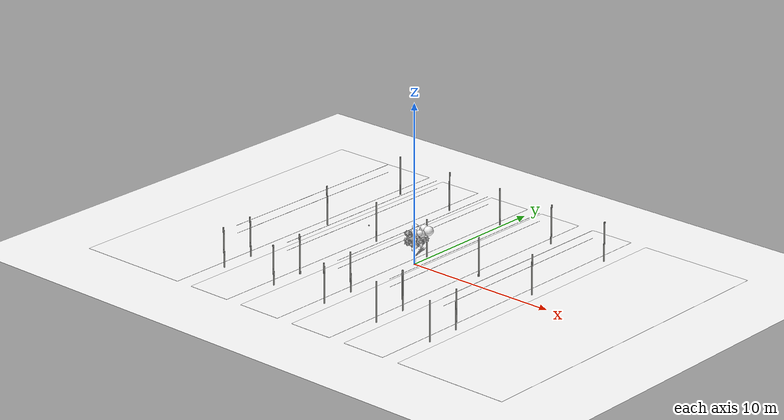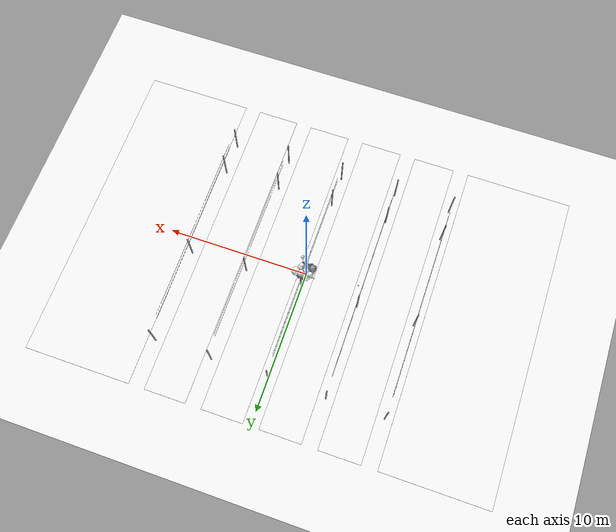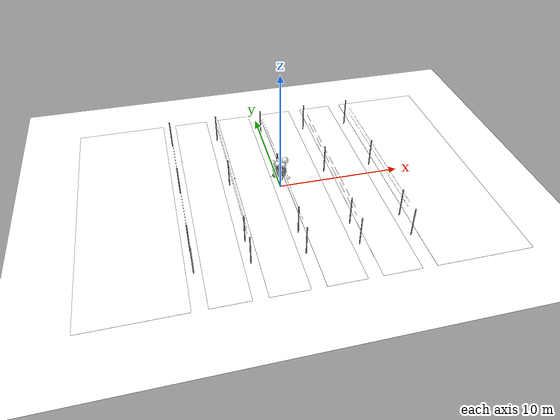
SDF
<sdf version="1.11">
 <world name="peach_orchard">
  <model name="ground">
   <static>true</static>
   <link name="link">
    <visual name="soil">
     <geometry><plane><normal>0 0 1</normal><size>32 22</size></plane></geometry>
     <material>
      <ambient>1 1 1 1</ambient>
      <diffuse>1 1 1 1</diffuse>
      <specular>0.1 0.1 0.1 1</specular>
      <pbr>
       <metal>
        <albedo_map>textures/soil_albedo.png</albedo_map>
        <normal_map type="tangent">textures/soil_normal.png</normal_map>
        <roughness>0.95</roughness>
        <metalness>0</metalness>
       </metal>
      </pbr>
     </material>
    </visual>
    <collision name="c_soil">
     <geometry><plane><normal>0 0 1</normal><size>32 22</size></plane></geometry>
    </collision>
   </link>
  </model>
  <model name="ground_cover">
   <static>true</static>
   <link name="link">
    <visual name="grass_0">
     <pose>-12.275 0 0.006 0 0 0</pose>
     <geometry><box><size>7.45 22 0.012</size></box></geometry>
     <material>
      <ambient>1 1 1 1</ambient>
      <diffuse>1 1 1 1</diffuse>
      <specular>0.1 0.1 0.1 1</specular>
      <pbr>
       <metal>
        <albedo_map>textures/grass_albedo.png</albedo_map>
        <normal_map type="tangent">textures/grass_normal.png</normal_map>
        <roughness>0.95</roughness>
        <metalness>0</metalness>
       </metal>
      </pbr>
     </material>
    </visual>
    <visual name="grass_1">
     <pose>12.275 0 0.006 0 0 0</pose>
     <geometry><box><size>7.45 22 0.012</size></box></geometry>
     <material>
      <ambient>1 1 1 1</ambient>
      <diffuse>1 1 1 1</diffuse>
      <specular>0.1 0.1 0.1 1</specular>
      <pbr>
       <metal>
        <albedo_map>textures/grass_albedo.png</albedo_map>
        <normal_map type="tangent">textures/grass_normal.png</normal_map>
        <roughness>0.95</roughness>
        <metalness>0</metalness>
       </metal>
      </pbr>
     </material>
    </visual>
    <visual name="grass_2">
     <pose>-6 0 0.006 0 0 0</pose>
     <geometry><box><size>2.9 22 0.012</size></box></geometry>
     <material>
      <ambient>1 1 1 1</ambient>
      <diffuse>1 1 1 1</diffuse>
      <specular>0.1 0.1 0.1 1</specular>
      <pbr>
       <metal>
        <albedo_map>textures/grass_albedo.png</albedo_map>
        <normal_map type="tangent">textures/grass_normal.png</normal_map>
        <roughness>0.95</roughness>
        <metalness>0</metalness>
       </metal>
      </pbr>
     </material>
    </visual>
    <visual name="grass_3">
     <pose>-2 0 0.006 0 0 0</pose>
     <geometry><box><size>2.9 22 0.012</size></box></geometry>
     <material>
      <ambient>1 1 1 1</ambient>
      <diffuse>1 1 1 1</diffuse>
      <specular>0.1 0.1 0.1 1</specular>
      <pbr>
       <metal>
        <albedo_map>textures/grass_albedo.png</albedo_map>
        <normal_map type="tangent">textures/grass_normal.png</normal_map>
        <roughness>0.95</roughness>
        <metalness>0</metalness>
       </metal>
      </pbr>
     </material>
    </visual>
    <visual name="grass_4">
     <pose>2 0 0.006 0 0 0</pose>
     <geometry><box><size>2.9 22 0.012</size></box></geometry>
     <material>
      <ambient>1 1 1 1</ambient>
      <diffuse>1 1 1 1</diffuse>
      <specular>0.1 0.1 0.1 1</specular>
      <pbr>
       <metal>
        <albedo_map>textures/grass_albedo.png</albedo_map>
        <normal_map type="tangent">textures/grass_normal.png</normal_map>
        <roughness>0.95</roughness>
        <metalness>0</metalness>
       </metal>
      </pbr>
     </material>
    </visual>
    <visual name="grass_5">
     <pose>6 0 0.006 0 0 0</pose>
     <geometry><box><size>2.9 22 0.012</size></box></geometry>
     <material>
      <ambient>1 1 1 1</ambient>
      <diffuse>1 1 1 1</diffuse>
      <specular>0.1 0.1 0.1 1</specular>
      <pbr>
       <metal>
        <albedo_map>textures/grass_albedo.png</albedo_map>
        <normal_map type="tangent">textures/grass_normal.png</normal_map>
        <roughness>0.95</roughness>
        <metalness>0</metalness>
       </metal>
      </pbr>
     </material>
    </visual>
   </link>
  </model>
  <model name="trellis_row_0">
   <static>true</static>
   <link name="link">
    <visual name="post_0">
     <pose>-8 -7.7 1.25 0 0 0</pose>
     <geometry><cylinder><radius>0.045</radius><length>2.5</length></cylinder></geometry>
     <material>
      <ambient>0.62 0.62 0.6 1</ambient>
      <diffuse>0.62 0.62 0.6 1</diffuse>
      <specular>0.1 0.1 0.1 1</specular>
     </material>
    </visual>
    <collision name="c_post_0">
     <pose>-8 -7.7 1.25 0 0 0</pose>
     <geometry><cylinder><radius>0.045</radius><length>2.5</length></cylinder></geometry>
    </collision>
    <visual name="post_1">
     <pose>-8 7.7 1.25 0 0 0</pose>
     <geometry><cylinder><radius>0.045</radius><length>2.5</length></cylinder></geometry>
     <material>
      <ambient>0.62 0.62 0.6 1</ambient>
      <diffuse>0.62 0.62 0.6 1</diffuse>
      <specular>0.1 0.1 0.1 1</specular>
     </material>
    </visual>
    <collision name="c_post_1">
     <pose>-8 7.7 1.25 0 0 0</pose>
     <geometry><cylinder><radius>0.045</radius><length>2.5</length></cylinder></geometry>
    </collision>
    <visual name="post_2">
     <pose>-8 -5.5 1.25 0 0 0</pose>
     <geometry><cylinder><radius>0.045</radius><length>2.5</length></cylinder></geometry>
     <material>
      <ambient>0.62 0.62 0.6 1</ambient>
      <diffuse>0.62 0.62 0.6 1</diffuse>
      <specular>0.1 0.1 0.1 1</specular>
     </material>
    </visual>
    <collision name="c_post_2">
     <pose>-8 -5.5 1.25 0 0 0</pose>
     <geometry><cylinder><radius>0.045</radius><length>2.5</length></cylinder></geometry>
    </collision>
    <visual name="post_3">
     <pose>-8 1.1 1.25 0 0 0</pose>
     <geometry><cylinder><radius>0.045</radius><length>2.5</length></cylinder></geometry>
     <material>
      <ambient>0.62 0.62 0.6 1</ambient>
      <diffuse>0.62 0.62 0.6 1</diffuse>
      <specular>0.1 0.1 0.1 1</specular>
     </material>
    </visual>
    <collision name="c_post_3">
     <pose>-8 1.1 1.25 0 0 0</pose>
     <geometry><cylinder><radius>0.045</radius><length>2.5</length></cylinder></geometry>
    </collision>
    <visual name="wire_0">
     <pose>-8 0 1.8 0 1.5708 1.5708</pose>
     <geometry><cylinder><radius>0.006</radius><length>13.2</length></cylinder></geometry>
     <material>
      <ambient>0.45 0.45 0.45 1</ambient>
      <diffuse>0.45 0.45 0.45 1</diffuse>
      <specular>0.1 0.1 0.1 1</specular>
     </material>
    </visual>
    <visual name="wire_1">
     <pose>-8 0 2.3 0 1.5708 1.5708</pose>
     <geometry><cylinder><radius>0.006</radius><length>13.2</length></cylinder></geometry>
     <material>
      <ambient>0.45 0.45 0.45 1</ambient>
      <diffuse>0.45 0.45 0.45 1</diffuse>
      <specular>0.1 0.1 0.1 1</specular>
     </material>
    </visual>
   </link>
  </model>
  <model name="trellis_row_1">
   <static>true</static>
   <link name="link">
    <visual name="post_0">
     <pose>-4 -7.7 1.25 0 0 0</pose>
     <geometry><cylinder><radius>0.045</radius><length>2.5</length></cylinder></geometry>
     <material>
      <ambient>0.62 0.62 0.6 1</ambient>
      <diffuse>0.62 0.62 0.6 1</diffuse>
      <specular>0.1 0.1 0.1 1</specular>
     </material>
    </visual>
    <collision name="c_post_0">
     <pose>-4 -7.7 1.25 0 0 0</pose>
     <geometry><cylinder><radius>0.045</radius><length>2.5</length></cylinder></geometry>
    </collision>
    <visual name="post_1">
     <pose>-4 7.7 1.25 0 0 0</pose>
     <geometry><cylinder><radius>0.045</radius><length>2.5</length></cylinder></geometry>
     <material>
      <ambient>0.62 0.62 0.6 1</ambient>
      <diffuse>0.62 0.62 0.6 1</diffuse>
      <specular>0.1 0.1 0.1 1</specular>
     </material>
    </visual>
    <collision name="c_post_1">
     <pose>-4 7.7 1.25 0 0 0</pose>
     <geometry><cylinder><radius>0.045</radius><length>2.5</length></cylinder></geometry>
    </collision>
    <visual name="post_2">
     <pose>-4 -5.5 1.25 0 0 0</pose>
     <geometry><cylinder><radius>0.045</radius><length>2.5</length></cylinder></geometry>
     <material>
      <ambient>0.62 0.62 0.6 1</ambient>
      <diffuse>0.62 0.62 0.6 1</diffuse>
      <specular>0.1 0.1 0.1 1</specular>
     </material>
    </visual>
    <collision name="c_post_2">
     <pose>-4 -5.5 1.25 0 0 0</pose>
     <geometry><cylinder><radius>0.045</radius><length>2.5</length></cylinder></geometry>
    </collision>
    <visual name="post_3">
     <pose>-4 1.1 1.25 0 0 0</pose>
     <geometry><cylinder><radius>0.045</radius><length>2.5</length></cylinder></geometry>
     <material>
      <ambient>0.62 0.62 0.6 1</ambient>
      <diffuse>0.62 0.62 0.6 1</diffuse>
      <specular>0.1 0.1 0.1 1</specular>
     </material>
    </visual>
    <collision name="c_post_3">
     <pose>-4 1.1 1.25 0 0 0</pose>
     <geometry><cylinder><radius>0.045</radius><length>2.5</length></cylinder></geometry>
    </collision>
    <visual name="wire_0">
     <pose>-4 0 1.8 0 1.5708 1.5708</pose>
     <geometry><cylinder><radius>0.006</radius><length>13.2</length></cylinder></geometry>
     <material>
      <ambient>0.45 0.45 0.45 1</ambient>
      <diffuse>0.45 0.45 0.45 1</diffuse>
      <specular>0.1 0.1 0.1 1</specular>
     </material>
    </visual>
    <visual name="wire_1">
     <pose>-4 0 2.3 0 1.5708 1.5708</pose>
     <geometry><cylinder><radius>0.006</radius><length>13.2</length></cylinder></geometry>
     <material>
      <ambient>0.45 0.45 0.45 1</ambient>
      <diffuse>0.45 0.45 0.45 1</diffuse>
      <specular>0.1 0.1 0.1 1</specular>
     </material>
    </visual>
   </link>
  </model>
  <model name="trellis_row_2">
   <static>true</static>
   <link name="link">
    <visual name="post_0">
     <pose>0 -7.7 1.25 0 0 0</pose>
     <geometry><cylinder><radius>0.045</radius><length>2.5</length></cylinder></geometry>
     <material>
      <ambient>0.62 0.62 0.6 1</ambient>
      <diffuse>0.62 0.62 0.6 1</diffuse>
      <specular>0.1 0.1 0.1 1</specular>
     </material>
    </visual>
    <collision name="c_post_0">
     <pose>0 -7.7 1.25 0 0 0</pose>
     <geometry><cylinder><radius>0.045</radius><length>2.5</length></cylinder></geometry>
    </collision>
    <visual name="post_1">
     <pose>0 7.7 1.25 0 0 0</pose>
     <geometry><cylinder><radius>0.045</radius><length>2.5</length></cylinder></geometry>
     <material>
      <ambient>0.62 0.62 0.6 1</ambient>
      <diffuse>0.62 0.62 0.6 1</diffuse>
      <specular>0.1 0.1 0.1 1</specular>
     </material>
    </visual>
    <collision name="c_post_1">
     <pose>0 7.7 1.25 0 0 0</pose>
     <geometry><cylinder><radius>0.045</radius><length>2.5</length></cylinder></geometry>
    </collision>
    <visual name="post_2">
     <pose>0 -5.5 1.25 0 0 0</pose>
     <geometry><cylinder><radius>0.045</radius><length>2.5</length></cylinder></geometry>
     <material>
      <ambient>0.62 0.62 0.6 1</ambient>
      <diffuse>0.62 0.62 0.6 1</diffuse>
      <specular>0.1 0.1 0.1 1</specular>
     </material>
    </visual>
    <collision name="c_post_2">
     <pose>0 -5.5 1.25 0 0 0</pose>
     <geometry><cylinder><radius>0.045</radius><length>2.5</length></cylinder></geometry>
    </collision>
    <visual name="post_3">
     <pose>0 1.1 1.25 0 0 0</pose>
     <geometry><cylinder><radius>0.045</radius><length>2.5</length></cylinder></geometry>
     <material>
      <ambient>0.62 0.62 0.6 1</ambient>
      <diffuse>0.62 0.62 0.6 1</diffuse>
      <specular>0.1 0.1 0.1 1</specular>
     </material>
    </visual>
    <collision name="c_post_3">
     <pose>0 1.1 1.25 0 0 0</pose>
     <geometry><cylinder><radius>0.045</radius><length>2.5</length></cylinder></geometry>
    </collision>
    <visual name="wire_0">
     <pose>0 0 1.8 0 1.5708 1.5708</pose>
     <geometry><cylinder><radius>0.006</radius><length>13.2</length></cylinder></geometry>
     <material>
      <ambient>0.45 0.45 0.45 1</ambient>
      <diffuse>0.45 0.45 0.45 1</diffuse>
      <specular>0.1 0.1 0.1 1</specular>
     </material>
    </visual>
    <visual name="wire_1">
     <pose>0 0 2.3 0 1.5708 1.5708</pose>
     <geometry><cylinder><radius>0.006</radius><length>13.2</length></cylinder></geometry>
     <material>
      <ambient>0.45 0.45 0.45 1</ambient>
      <diffuse>0.45 0.45 0.45 1</diffuse>
      <specular>0.1 0.1 0.1 1</specular>
     </material>
    </visual>
   </link>
  </model>
  <model name="trellis_row_3">
   <static>true</static>
   <link name="link">
    <visual name="post_0">
     <pose>4 -7.7 1.25 0 0 0</pose>
     <geometry><cylinder><radius>0.045</radius><length>2.5</length></cylinder></geometry>
     <material>
      <ambient>0.62 0.62 0.6 1</ambient>
      <diffuse>0.62 0.62 0.6 1</diffuse>
      <specular>0.1 0.1 0.1 1</specular>
     </material>
    </visual>
    <collision name="c_post_0">
     <pose>4 -7.7 1.25 0 0 0</pose>
     <geometry><cylinder><radius>0.045</radius><length>2.5</length></cylinder></geometry>
    </collision>
    <visual name="post_1">
     <pose>4 7.7 1.25 0 0 0</pose>
     <geometry><cylinder><radius>0.045</radius><length>2.5</length></cylinder></geometry>
     <material>
      <ambient>0.62 0.62 0.6 1</ambient>
      <diffuse>0.62 0.62 0.6 1</diffuse>
      <specular>0.1 0.1 0.1 1</specular>
     </material>
    </visual>
    <collision name="c_post_1">
     <pose>4 7.7 1.25 0 0 0</pose>
     <geometry><cylinder><radius>0.045</radius><length>2.5</length></cylinder></geometry>
    </collision>
    <visual name="post_2">
     <pose>4 -5.5 1.25 0 0 0</pose>
     <geometry><cylinder><radius>0.045</radius><length>2.5</length></cylinder></geometry>
     <material>
      <ambient>0.62 0.62 0.6 1</ambient>
      <diffuse>0.62 0.62 0.6 1</diffuse>
      <specular>0.1 0.1 0.1 1</specular>
     </material>
    </visual>
    <collision name="c_post_2">
     <pose>4 -5.5 1.25 0 0 0</pose>
     <geometry><cylinder><radius>0.045</radius><length>2.5</length></cylinder></geometry>
    </collision>
    <visual name="post_3">
     <pose>4 1.1 1.25 0 0 0</pose>
     <geometry><cylinder><radius>0.045</radius><length>2.5</length></cylinder></geometry>
     <material>
      <ambient>0.62 0.62 0.6 1</ambient>
      <diffuse>0.62 0.62 0.6 1</diffuse>
      <specular>0.1 0.1 0.1 1</specular>
     </material>
    </visual>
    <collision name="c_post_3">
     <pose>4 1.1 1.25 0 0 0</pose>
     <geometry><cylinder><radius>0.045</radius><length>2.5</length></cylinder></geometry>
    </collision>
    <visual name="wire_0">
     <pose>4 0 1.8 0 1.5708 1.5708</pose>
     <geometry><cylinder><radius>0.006</radius><length>13.2</length></cylinder></geometry>
     <material>
      <ambient>0.45 0.45 0.45 1</ambient>
      <diffuse>0.45 0.45 0.45 1</diffuse>
      <specular>0.1 0.1 0.1 1</specular>
     </material>
    </visual>
    <visual name="wire_1">
     <pose>4 0 2.3 0 1.5708 1.5708</pose>
     <geometry><cylinder><radius>0.006</radius><length>13.2</length></cylinder></geometry>
     <material>
      <ambient>0.45 0.45 0.45 1</ambient>
      <diffuse>0.45 0.45 0.45 1</diffuse>
      <specular>0.1 0.1 0.1 1</specular>
     </material>
    </visual>
   </link>
  </model>
  <model name="trellis_row_4">
   <static>true</static>
   <link name="link">
    <visual name="post_0">
     <pose>8 -7.7 1.25 0 0 0</pose>
     <geometry><cylinder><radius>0.045</radius><length>2.5</length></cylinder></geometry>
     <material>
      <ambient>0.62 0.62 0.6 1</ambient>
      <diffuse>0.62 0.62 0.6 1</diffuse>
      <specular>0.1 0.1 0.1 1</specular>
     </material>
    </visual>
    <collision name="c_post_0">
     <pose>8 -7.7 1.25 0 0 0</pose>
     <geometry><cylinder><radius>0.045</radius><length>2.5</length></cylinder></geometry>
    </collision>
    <visual name="post_1">
     <pose>8 7.7 1.25 0 0 0</pose>
     <geometry><cylinder><radius>0.045</radius><length>2.5</length></cylinder></geometry>
     <material>
      <ambient>0.62 0.62 0.6 1</ambient>
      <diffuse>0.62 0.62 0.6 1</diffuse>
      <specular>0.1 0.1 0.1 1</specular>
     </material>
    </visual>
    <collision name="c_post_1">
     <pose>8 7.7 1.25 0 0 0</pose>
     <geometry><cylinder><radius>0.045</radius><length>2.5</length></cylinder></geometry>
    </collision>
    <visual name="post_2">
     <pose>8 -5.5 1.25 0 0 0</pose>
     <geometry><cylinder><radius>0.045</radius><length>2.5</length></cylinder></geometry>
     <material>
      <ambient>0.62 0.62 0.6 1</ambient>
      <diffuse>0.62 0.62 0.6 1</diffuse>
      <specular>0.1 0.1 0.1 1</specular>
     </material>
    </visual>
    <collision name="c_post_2">
     <pose>8 -5.5 1.25 0 0 0</pose>
     <geometry><cylinder><radius>0.045</radius><length>2.5</length></cylinder></geometry>
    </collision>
    <visual name="post_3">
     <pose>8 1.1 1.25 0 0 0</pose>
     <geometry><cylinder><radius>0.045</radius><length>2.5</length></cylinder></geometry>
     <material>
      <ambient>0.62 0.62 0.6 1</ambient>
      <diffuse>0.62 0.62 0.6 1</diffuse>
      <specular>0.1 0.1 0.1 1</specular>
     </material>
    </visual>
    <collision name="c_post_3">
     <pose>8 1.1 1.25 0 0 0</pose>
     <geometry><cylinder><radius>0.045</radius><length>2.5</length></cylinder></geometry>
    </collision>
    <visual name="wire_0">
     <pose>8 0 1.8 0 1.5708 1.5708</pose>
     <geometry><cylinder><radius>0.006</radius><length>13.2</length></cylinder></geometry>
     <material>
      <ambient>0.45 0.45 0.45 1</ambient>
      <diffuse>0.45 0.45 0.45 1</diffuse>
      <specular>0.1 0.1 0.1 1</specular>
     </material>
    </visual>
    <visual name="wire_1">
     <pose>8 0 2.3 0 1.5708 1.5708</pose>
     <geometry><cylinder><radius>0.006</radius><length>13.2</length></cylinder></geometry>
     <material>
      <ambient>0.45 0.45 0.45 1</ambient>
      <diffuse>0.45 0.45 0.45 1</diffuse>
      <specular>0.1 0.1 0.1 1</specular>
     </material>
    </visual>
   </link>
  </model>
  <model name="tree_r2_t3">
   <static>true</static>
   <link name="link">
    <visual name="tree_mesh">
     <pose>0 0 0 0 0 -0.197775</pose>
     <geometry>
      <mesh><uri>model://peach_sim/meshes/peach_tree_b.glb</uri><scale>0.92597 0.92597 0.92597</scale></mesh>
     </geometry>
    </visual>
    <visual name="trunk_0">
     <pose>0 0 0.139424 0 0 0</pose>
     <geometry><cylinder><radius>0.051661</radius><length>0.278849</length></cylinder></geometry>
     <material>
      <ambient>1 1 1 1</ambient>
      <diffuse>1 1 1 1</diffuse>
      <specular>0.1 0.1 0.1 1</specular>
      <pbr>
       <metal>
        <albedo_map>textures/bark_albedo.png</albedo_map>
        <normal_map type="tangent">textures/bark_normal.png</normal_map>
        <roughness>0.9</roughness>
        <metalness>0</metalness>
       </metal>
      </pbr>
     </material>
    </visual>
    <collision name="c_trunk_0">
     <pose>0 0 0.139424 0 0 0</pose>
     <geometry><cylinder><radius>0.051661</radius><length>0.278849</length></cylinder></geometry>
    </collision>
    <visual name="trunk_1">
     <pose>0 0 0.392923 0 0 0</pose>
     <geometry><cylinder><radius>0.0371959</radius><length>0.228149</length></cylinder></geometry>
     <material>
      <ambient>1 1 1 1</ambient>
      <diffuse>1 1 1 1</diffuse>
      <specular>0.1 0.1 0.1 1</specular>
      <pbr>
       <metal>
        <albedo_map>textures/bark_albedo.png</albedo_map>
        <normal_map type="tangent">textures/bark_normal.png</normal_map>
        <roughness>0.9</roughness>
        <metalness>0</metalness>
       </metal>
      </pbr>
     </material>
    </visual>
    <collision name="c_trunk_1">
     <pose>0 0 0.392923 0 0 0</pose>
     <geometry><cylinder><radius>0.0371959</radius><length>0.228149</length></cylinder></geometry>
    </collision>
    <visual name="root_flare">
     <pose>0 0 0.035 0 0 0</pose>
     <geometry><cylinder><radius>0.0749084</radius><length>0.07</length></cylinder></geometry>
     <material>
      <ambient>1 1 1 1</ambient>
      <diffuse>1 1 1 1</diffuse>
      <specular>0.1 0.1 0.1 1</specular>
      <pbr>
       <metal>
        <albedo_map>textures/bark_albedo.png</albedo_map>
        <normal_map type="tangent">textures/bark_normal.png</normal_map>
        <roughness>0.95</roughness>
        <metalness>0</metalness>
       </metal>
      </pbr>
     </material>
    </visual>
    <visual name="scaffold_0">
     <pose>0.0647018 0.279587 0.734143 0 0.820127 1.34338</pose>
     <geometry><cylinder><radius>0.022</radius><length>0.784911</length></cylinder></geometry>
     <material>
      <ambient>1 1 1 1</ambient>
      <diffuse>1 1 1 1</diffuse>
      <specular>0.1 0.1 0.1 1</specular>
      <pbr>
       <metal>
        <albedo_map>textures/bark_albedo.png</albedo_map>
        <normal_map type="tangent">textures/bark_normal.png</normal_map>
        <roughness>0.9</roughness>
        <metalness>0</metalness>
       </metal>
      </pbr>
     </material>
    </visual>
    <collision name="c_scaffold_0">
     <pose>0.0647018 0.279587 0.734143 0 0.820127 1.34338</pose>
     <geometry><cylinder><radius>0.022</radius><length>0.784911</length></cylinder></geometry>
    </collision>
    <visual name="branchlet_0_0">
     <pose>-0.0458925 0.475325 0.782699 0 1.86301 2.53261</pose>
     <geometry><cylinder><radius>0.012</radius><length>0.341783</length></cylinder></geometry>
     <material>
      <ambient>1 1 1 1</ambient>
      <diffuse>1 1 1 1</diffuse>
      <specular>0.1 0.1 0.1 1</specular>
      <pbr>
       <metal>
        <albedo_map>textures/bark_albedo.png</albedo_map>
        <normal_map type="tangent">textures/bark_normal.png</normal_map>
        <roughness>0.9</roughness>
        <metalness>0</metalness>
       </metal>
      </pbr>
     </material>
    </visual>
    <visual name="branchlet_0_1">
     <pose>0.145707 0.55727 0.849934 0 1.83911 1.21558</pose>
     <geometry><cylinder><radius>0.012</radius><length>0.265479</length></cylinder></geometry>
     <material>
      <ambient>1 1 1 1</ambient>
      <diffuse>1 1 1 1</diffuse>
      <specular>0.1 0.1 0.1 1</specular>
      <pbr>
       <metal>
        <albedo_map>textures/bark_albedo.png</albedo_map>
        <normal_map type="tangent">textures/bark_normal.png</normal_map>
        <roughness>0.9</roughness>
        <metalness>0</metalness>
       </metal>
      </pbr>
     </material>
    </visual>
    <visual name="scaffold_1">
     <pose>0.200473 0.242958 0.719245 0 0.894478 0.880917</pose>
     <geometry><cylinder><radius>0.022</radius><length>0.807786</length></cylinder></geometry>
     <material>
      <ambient>1 1 1 1</ambient>
      <diffuse>1 1 1 1</diffuse>
      <specular>0.1 0.1 0.1 1</specular>
      <pbr>
       <metal>
        <albedo_map>textures/bark_albedo.png</albedo_map>
        <normal_map type="tangent">textures/bark_normal.png</normal_map>
        <roughness>0.9</roughness>
        <metalness>0</metalness>
       </metal>
      </pbr>
     </material>
    </visual>
    <collision name="c_scaffold_1">
     <pose>0.200473 0.242958 0.719245 0 0.894478 0.880917</pose>
     <geometry><cylinder><radius>0.022</radius><length>0.807786</length></cylinder></geometry>
    </collision>
    <visual name="branchlet_1_0">
     <pose>0.238555 0.277813 0.776753 0 0.782394 0.7906</pose>
     <geometry><cylinder><radius>0.012</radius><length>0.226163</length></cylinder></geometry>
     <material>
      <ambient>1 1 1 1</ambient>
      <diffuse>1 1 1 1</diffuse>
      <specular>0.1 0.1 0.1 1</specular>
      <pbr>
       <metal>
        <albedo_map>textures/bark_albedo.png</albedo_map>
        <normal_map type="tangent">textures/bark_normal.png</normal_map>
        <roughness>0.9</roughness>
        <metalness>0</metalness>
       </metal>
      </pbr>
     </material>
    </visual>
    <visual name="branchlet_1_1">
     <pose>0.3228 0.536552 0.921957 0 1.48927 1.85278</pose>
     <geometry><cylinder><radius>0.012</radius><length>0.224739</length></cylinder></geometry>
     <material>
      <ambient>1 1 1 1</ambient>
      <diffuse>1 1 1 1</diffuse>
      <specular>0.1 0.1 0.1 1</specular>
      <pbr>
       <metal>
        <albedo_map>textures/bark_albedo.png</albedo_map>
        <normal_map type="tangent">textures/bark_normal.png</normal_map>
        <roughness>0.9</roughness>
        <metalness>0</metalness>
       </metal>
      </pbr>
     </material>
    </visual>
    <visual name="scaffold_2">
     <pose>-0.260805 0.223021 0.709563 0 0.954393 2.43413</pose>
     <geometry><cylinder><radius>0.022</radius><length>0.841113</length></cylinder></geometry>
     <material>
      <ambient>1 1 1 1</ambient>
      <diffuse>1 1 1 1</diffuse>
      <specular>0.1 0.1 0.1 1</specular>
      <pbr>
       <metal>
        <albedo_map>textures/bark_albedo.png</albedo_map>
        <normal_map type="tangent">textures/bark_normal.png</normal_map>
        <roughness>0.9</roughness>
        <metalness>0</metalness>
       </metal>
      </pbr>
     </material>
    </visual>
    <collision name="c_scaffold_2">
     <pose>-0.260805 0.223021 0.709563 0 0.954393 2.43413</pose>
     <geometry><cylinder><radius>0.022</radius><length>0.841113</length></cylinder></geometry>
    </collision>
    <visual name="branchlet_2_0">
     <pose>-0.595814 0.398003 0.869431 0 1.685 3.05278</pose>
     <geometry><cylinder><radius>0.012</radius><length>0.294143</length></cylinder></geometry>
     <material>
      <ambient>1 1 1 1</ambient>
      <diffuse>1 1 1 1</diffuse>
      <specular>0.1 0.1 0.1 1</specular>
      <pbr>
       <metal>
        <albedo_map>textures/bark_albedo.png</albedo_map>
        <normal_map type="tangent">textures/bark_normal.png</normal_map>
        <roughness>0.9</roughness>
        <metalness>0</metalness>
       </metal>
      </pbr>
     </material>
    </visual>
    <visual name="branchlet_2_1">
     <pose>-0.523666 0.357707 0.953075 0 0.858666 -2.81337</pose>
     <geometry><cylinder><radius>0.012</radius><length>0.210311</length></cylinder></geometry>
     <material>
      <ambient>1 1 1 1</ambient>
      <diffuse>1 1 1 1</diffuse>
      <specular>0.1 0.1 0.1 1</specular>
      <pbr>
       <metal>
        <albedo_map>textures/bark_albedo.png</albedo_map>
        <normal_map type="tangent">textures/bark_normal.png</normal_map>
        <roughness>0.9</roughness>
        <metalness>0</metalness>
       </metal>
      </pbr>
     </material>
    </visual>
    <visual name="canopy_0">
     <pose>0.116293 0.734703 2.06459 0 0 0</pose>
     <geometry><sphere><radius>0.243789</radius></sphere></geometry>
     <material>
      <ambient>1 1 1 1</ambient>
      <diffuse>1 1 1 1</diffuse>
      <specular>0.1 0.1 0.1 1</specular>
      <pbr>
       <metal>
        <albedo_map>textures/leaf_albedo.png</albedo_map>
        <normal_map type="tangent">textures/leaf_normal.png</normal_map>
        <roughness>0.85</roughness>
        <metalness>0</metalness>
       </metal>
      </pbr>
     </material>
    </visual>
    <collision name="c_canopy_0">
     <pose>0.116293 0.734703 2.06459 0 0 0</pose>
     <geometry><sphere><radius>0.243789</radius></sphere></geometry>
    </collision>
    <visual name="canopy_1">
     <pose>0.266612 0.180175 1.98737 0 0 0</pose>
     <geometry><sphere><radius>0.188059</radius></sphere></geometry>
     <material>
      <ambient>1 1 1 1</ambient>
      <diffuse>1 1 1 1</diffuse>
      <specular>0.1 0.1 0.1 1</specular>
      <pbr>
       <metal>
        <albedo_map>textures/leaf_albedo.png</albedo_map>
        <normal_map type="tangent">textures/leaf_normal.png</normal_map>
        <roughness>0.85</roughness>
        <metalness>0</metalness>
       </metal>
      </pbr>
     </material>
    </visual>
    <collision name="c_canopy_1">
     <pose>0.266612 0.180175 1.98737 0 0 0</pose>
     <geometry><sphere><radius>0.188059</radius></sphere></geometry>
    </collision>
    <visual name="canopy_2">
     <pose>-0.470236 0.611005 2.03959 0 0 0</pose>
     <geometry><sphere><radius>0.193866</radius></sphere></geometry>
     <material>
      <ambient>1 1 1 1</ambient>
      <diffuse>1 1 1 1</diffuse>
      <specular>0.1 0.1 0.1 1</specular>
      <pbr>
       <metal>
        <albedo_map>textures/leaf_albedo.png</albedo_map>
        <normal_map type="tangent">textures/leaf_normal.png</normal_map>
        <roughness>0.85</roughness>
        <metalness>0</metalness>
       </metal>
      </pbr>
     </material>
    </visual>
    <collision name="c_canopy_2">
     <pose>-0.470236 0.611005 2.03959 0 0 0</pose>
     <geometry><sphere><radius>0.193866</radius></sphere></geometry>
    </collision>
    <visual name="canopy_3">
     <pose>0.331348 0.559054 1.82974 0 0 0</pose>
     <geometry><sphere><radius>0.185265</radius></sphere></geometry>
     <material>
      <ambient>1 1 1 1</ambient>
      <diffuse>1 1 1 1</diffuse>
      <specular>0.1 0.1 0.1 1</specular>
      <pbr>
       <metal>
        <albedo_map>textures/leaf_albedo.png</albedo_map>
        <normal_map type="tangent">textures/leaf_normal.png</normal_map>
        <roughness>0.85</roughness>
        <metalness>0</metalness>
       </metal>
      </pbr>
     </material>
    </visual>
    <visual name="canopy_4">
     <pose>0.269982 0.291728 1.9084 0 0 0</pose>
     <geometry><sphere><radius>0.232861</radius></sphere></geometry>
     <material>
      <ambient>1 1 1 1</ambient>
      <diffuse>1 1 1 1</diffuse>
      <specular>0.1 0.1 0.1 1</specular>
      <pbr>
       <metal>
        <albedo_map>textures/leaf_albedo.png</albedo_map>
        <normal_map type="tangent">textures/leaf_normal.png</normal_map>
        <roughness>0.85</roughness>
        <metalness>0</metalness>
       </metal>
      </pbr>
     </material>
    </visual>
    <visual name="canopy_5">
     <pose>-0.116327 0.458457 1.91658 0 0 0</pose>
     <geometry><sphere><radius>0.255737</radius></sphere></geometry>
     <material>
      <ambient>1 1 1 1</ambient>
      <diffuse>1 1 1 1</diffuse>
      <specular>0.1 0.1 0.1 1</specular>
      <pbr>
       <metal>
        <albedo_map>textures/leaf_albedo.png</albedo_map>
        <normal_map type="tangent">textures/leaf_normal.png</normal_map>
        <roughness>0.85</roughness>
        <metalness>0</metalness>
       </metal>
      </pbr>
     </material>
    </visual>
    <visual name="canopy_6">
     <pose>-0.100569 0.450116 1.81727 0 0 0</pose>
     <geometry><sphere><radius>0.22117</radius></sphere></geometry>
     <material>
      <ambient>1 1 1 1</ambient>
      <diffuse>1 1 1 1</diffuse>
      <specular>0.1 0.1 0.1 1</specular>
      <pbr>
       <metal>
        <albedo_map>textures/leaf_albedo.png</albedo_map>
        <normal_map type="tangent">textures/leaf_normal.png</normal_map>
        <roughness>0.85</roughness>
        <metalness>0</metalness>
       </metal>
      </pbr>
     </material>
    </visual>
    <visual name="canopy_7">
     <pose>0.501421 0.674604 2.03154 0 0 0</pose>
     <geometry><sphere><radius>0.291796</radius></sphere></geometry>
     <material>
      <ambient>1 1 1 1</ambient>
      <diffuse>1 1 1 1</diffuse>
      <specular>0.1 0.1 0.1 1</specular>
      <pbr>
       <metal>
        <albedo_map>textures/leaf_albedo.png</albedo_map>
        <normal_map type="tangent">textures/leaf_normal.png</normal_map>
        <roughness>0.85</roughness>
        <metalness>0</metalness>
       </metal>
      </pbr>
     </material>
    </visual>
    <visual name="canopy_8">
     <pose>-0.228133 0.669702 1.68376 0 0 0</pose>
     <geometry><sphere><radius>0.305806</radius></sphere></geometry>
     <material>
      <ambient>1 1 1 1</ambient>
      <diffuse>1 1 1 1</diffuse>
      <specular>0.1 0.1 0.1 1</specular>
      <pbr>
       <metal>
        <albedo_map>textures/leaf_albedo.png</albedo_map>
        <normal_map type="tangent">textures/leaf_normal.png</normal_map>
        <roughness>0.85</roughness>
        <metalness>0</metalness>
       </metal>
      </pbr>
     </material>
    </visual>
    <visual name="foliage_0">
     <pose>0.425778 0.0991783 1.31789 0 0 0</pose>
     <geometry><sphere><radius>0.0968668</radius></sphere></geometry>
     <material>
      <ambient>1 1 1 1</ambient>
      <diffuse>1 1 1 1</diffuse>
      <specular>0.1 0.1 0.1 1</specular>
      <pbr>
       <metal>
        <albedo_map>textures/leaf_albedo.png</albedo_map>
        <normal_map type="tangent">textures/leaf_normal.png</normal_map>
        <roughness>0.85</roughness>
        <metalness>0</metalness>
       </metal>
      </pbr>
     </material>
    </visual>
    <visual name="foliage_4">
     <pose>0.502003 -0.667623 1.29855 0 0 0</pose>
     <geometry><sphere><radius>0.10999</radius></sphere></geometry>
     <material>
      <ambient>1 1 1 1</ambient>
      <diffuse>1 1 1 1</diffuse>
      <specular>0.1 0.1 0.1 1</specular>
      <pbr>
       <metal>
        <albedo_map>textures/leaf_albedo.png</albedo_map>
        <normal_map type="tangent">textures/leaf_normal.png</normal_map>
        <roughness>0.85</roughness>
        <metalness>0</metalness>
       </metal>
      </pbr>
     </material>
    </visual>
    <visual name="foliage_8">
     <pose>0.23599 -0.150526 1.30221 0 0 0</pose>
     <geometry><sphere><radius>0.124129</radius></sphere></geometry>
     <material>
      <ambient>1 1 1 1</ambient>
      <diffuse>1 1 1 1</diffuse>
      <specular>0.1 0.1 0.1 1</specular>
      <pbr>
       <metal>
        <albedo_map>textures/leaf_albedo.png</albedo_map>
        <normal_map type="tangent">textures/leaf_normal.png</normal_map>
        <roughness>0.85</roughness>
        <metalness>0</metalness>
       </metal>
      </pbr>
     </material>
    </visual>
    <visual name="twig_0">
     <pose>0.389178 0.155029 1.44067 0 0.691941 2.96547</pose>
     <geometry><cylinder><radius>0.007</radius><length>0.140656</length></cylinder></geometry>
     <material>
      <ambient>1 1 1 1</ambient>
      <diffuse>1 1 1 1</diffuse>
      <specular>0.1 0.1 0.1 1</specular>
      <pbr>
       <metal>
        <albedo_map>textures/bark_albedo.png</albedo_map>
        <normal_map type="tangent">textures/bark_normal.png</normal_map>
        <roughness>0.9</roughness>
        <metalness>0</metalness>
       </metal>
      </pbr>
     </material>
    </visual>
    <visual name="twig_1">
     <pose>0.366033 -0.023662 1.45121 0 0.509178 2.95824</pose>
     <geometry><cylinder><radius>0.007</radius><length>0.190289</length></cylinder></geometry>
     <material>
      <ambient>1 1 1 1</ambient>
      <diffuse>1 1 1 1</diffuse>
      <specular>0.1 0.1 0.1 1</specular>
      <pbr>
       <metal>
        <albedo_map>textures/bark_albedo.png</albedo_map>
        <normal_map type="tangent">textures/bark_normal.png</normal_map>
        <roughness>0.9</roughness>
        <metalness>0</metalness>
       </metal>
      </pbr>
     </material>
    </visual>
    <visual name="twig_2">
     <pose>0.431432 -0.26326 1.40563 0 0.685744 3.05802</pose>
     <geometry><cylinder><radius>0.007</radius><length>0.106031</length></cylinder></geometry>
     <material>
      <ambient>1 1 1 1</ambient>
      <diffuse>1 1 1 1</diffuse>
      <specular>0.1 0.1 0.1 1</specular>
      <pbr>
       <metal>
        <albedo_map>textures/bark_albedo.png</albedo_map>
        <normal_map type="tangent">textures/bark_normal.png</normal_map>
        <roughness>0.9</roughness>
        <metalness>0</metalness>
       </metal>
      </pbr>
     </material>
    </visual>
    <visual name="twig_3">
     <pose>0.439075 -0.44581 1.47795 0 0.360622 -2.58257</pose>
     <geometry><cylinder><radius>0.007</radius><length>0.19948</length></cylinder></geometry>
     <material>
      <ambient>1 1 1 1</ambient>
      <diffuse>1 1 1 1</diffuse>
      <specular>0.1 0.1 0.1 1</specular>
      <pbr>
       <metal>
        <albedo_map>textures/bark_albedo.png</albedo_map>
        <normal_map type="tangent">textures/bark_normal.png</normal_map>
        <roughness>0.9</roughness>
        <metalness>0</metalness>
       </metal>
      </pbr>
     </material>
    </visual>
    <visual name="twig_4">
     <pose>0.437067 -0.594407 1.43349 0 0.734733 -2.7814</pose>
     <geometry><cylinder><radius>0.007</radius><length>0.215805</length></cylinder></geometry>
     <material>
      <ambient>1 1 1 1</ambient>
      <diffuse>1 1 1 1</diffuse>
      <specular>0.1 0.1 0.1 1</specular>
      <pbr>
       <metal>
        <albedo_map>textures/bark_albedo.png</albedo_map>
        <normal_map type="tangent">textures/bark_normal.png</normal_map>
        <roughness>0.9</roughness>
        <metalness>0</metalness>
       </metal>
      </pbr>
     </material>
    </visual>
    <visual name="twig_5">
     <pose>0.192567 0.266319 1.42864 0 0.646712 -2.9951</pose>
     <geometry><cylinder><radius>0.007</radius><length>0.150086</length></cylinder></geometry>
     <material>
      <ambient>1 1 1 1</ambient>
      <diffuse>1 1 1 1</diffuse>
      <specular>0.1 0.1 0.1 1</specular>
      <pbr>
       <metal>
        <albedo_map>textures/bark_albedo.png</albedo_map>
        <normal_map type="tangent">textures/bark_normal.png</normal_map>
        <roughness>0.9</roughness>
        <metalness>0</metalness>
       </metal>
      </pbr>
     </material>
    </visual>
    <visual name="twig_6">
     <pose>0.183729 0.182371 1.50402 0 0.181535 -2.5836</pose>
     <geometry><cylinder><radius>0.007</radius><length>0.158234</length></cylinder></geometry>
     <material>
      <ambient>1 1 1 1</ambient>
      <diffuse>1 1 1 1</diffuse>
      <specular>0.1 0.1 0.1 1</specular>
      <pbr>
       <metal>
        <albedo_map>textures/bark_albedo.png</albedo_map>
        <normal_map type="tangent">textures/bark_normal.png</normal_map>
        <roughness>0.9</roughness>
        <metalness>0</metalness>
       </metal>
      </pbr>
     </material>
    </visual>
    <visual name="twig_7">
     <pose>0.156651 0.0433725 1.43363 0 0.456791 -2.86437</pose>
     <geometry><cylinder><radius>0.007</radius><length>0.132596</length></cylinder></geometry>
     <material>
      <ambient>1 1 1 1</ambient>
      <diffuse>1 1 1 1</diffuse>
      <specular>0.1 0.1 0.1 1</specular>
      <pbr>
       <metal>
        <albedo_map>textures/bark_albedo.png</albedo_map>
        <normal_map type="tangent">textures/bark_normal.png</normal_map>
        <roughness>0.9</roughness>
        <metalness>0</metalness>
       </metal>
      </pbr>
     </material>
    </visual>
    <visual name="twig_8">
     <pose>0.190861 -0.147823 1.43256 0 0.547873 2.69449</pose>
     <geometry><cylinder><radius>0.007</radius><length>0.12493</length></cylinder></geometry>
     <material>
      <ambient>1 1 1 1</ambient>
      <diffuse>1 1 1 1</diffuse>
      <specular>0.1 0.1 0.1 1</specular>
      <pbr>
       <metal>
        <albedo_map>textures/bark_albedo.png</albedo_map>
        <normal_map type="tangent">textures/bark_normal.png</normal_map>
        <roughness>0.9</roughness>
        <metalness>0</metalness>
       </metal>
      </pbr>
     </material>
    </visual>
    <visual name="twig_9">
     <pose>0.170247 -0.335711 1.5212 0 0.475213 -3.10535</pose>
     <geometry><cylinder><radius>0.007</radius><length>0.217141</length></cylinder></geometry>
     <material>
      <ambient>1 1 1 1</ambient>
      <diffuse>1 1 1 1</diffuse>
      <specular>0.1 0.1 0.1 1</specular>
      <pbr>
       <metal>
        <albedo_map>textures/bark_albedo.png</albedo_map>
        <normal_map type="tangent">textures/bark_normal.png</normal_map>
        <roughness>0.9</roughness>
        <metalness>0</metalness>
       </metal>
      </pbr>
     </material>
    </visual>
   </link>
  </model>
  <model name="peach_tree_r1_t3_03">
   <pose>-3.6905 0.0944165 1.39366 0 0.0192815 2.44276</pose>
   <static>true</static>
   <link name="bag">
    <visual name="bag_mesh">
     <pose>0 0 0.0401426 0 0 0</pose>
     <geometry>
      <mesh><uri>model://peach_sim/meshes/bagged_peach.glb</uri><scale>0.97697 1.0658 0.912332</scale></mesh>
     </geometry>
    </visual>
    <visual name="body">
     <pose>0 0 0.0221426 0 0 0</pose>
     <geometry><ellipsoid><radii>0.0366364 0.0277107 0.023914</radii></ellipsoid></geometry>
     <material>
      <ambient>1 1 1 1</ambient>
      <diffuse>1 1 1 1</diffuse>
      <specular>0.1 0.1 0.1 1</specular>
      <pbr>
       <metal>
        <albedo_map>textures/paper_bag_albedo.png</albedo_map>
        <normal_map type="tangent">textures/paper_bag_normal.png</normal_map>
        <roughness>0.72</roughness>
        <metalness>0</metalness>
       </metal>
      </pbr>
     </material>
    </visual>
    <visual name="bottom_fold">
     <pose>0 0 0.012 0 0 0.35</pose>
     <geometry><box><size>0.0567864 0.0318673 0.022</size></box></geometry>
     <material>
      <ambient>1 1 1 1</ambient>
      <diffuse>1 1 1 1</diffuse>
      <specular>0.1 0.1 0.1 1</specular>
      <pbr>
       <metal>
        <albedo_map>textures/paper_bag_albedo.png</albedo_map>
        <normal_map type="tangent">textures/paper_bag_normal.png</normal_map>
        <roughness>0.8</roughness>
        <metalness>0</metalness>
       </metal>
      </pbr>
     </material>
    </visual>
    <visual name="fruit">
     <pose>0 0 0.0194551 0 0 0</pose>
     <geometry><sphere><radius>0.0264733</radius></sphere></geometry>
     <material>
      <ambient>1 1 1 1</ambient>
      <diffuse>1 1 1 1</diffuse>
      <specular>0.1 0.1 0.1 1</specular>
      <pbr>
       <metal>
        <albedo_map>textures/fruit_skin_albedo.png</albedo_map>
        <normal_map type="tangent">textures/fruit_skin_normal.png</normal_map>
        <roughness>0.55</roughness>
        <metalness>0</metalness>
       </metal>
      </pbr>
     </material>
    </visual>
    <visual name="neck">
     <pose>0 0 0.0532852 0 0 0</pose>
     <geometry><cylinder><radius>0.013</radius><length>0.018</length></cylinder></geometry>
     <material>
      <ambient>1 1 1 1</ambient>
      <diffuse>1 1 1 1</diffuse>
      <specular>0.1 0.1 0.1 1</specular>
      <pbr>
       <metal>
        <albedo_map>textures/paper_bag_albedo.png</albedo_map>
        <normal_map type="tangent">textures/paper_bag_normal.png</normal_map>
        <roughness>0.75</roughness>
        <metalness>0</metalness>
       </metal>
      </pbr>
     </material>
    </visual>
    <visual name="gather">
     <pose>0 0 0.0342852 0 0 0</pose>
     <geometry><cylinder><radius>0.019</radius><length>0.02</length></cylinder></geometry>
     <material>
      <ambient>1 1 1 1</ambient>
      <diffuse>1 1 1 1</diffuse>
      <specular>0.1 0.1 0.1 1</specular>
      <pbr>
       <metal>
        <albedo_map>textures/paper_bag_albedo.png</albedo_map>
        <normal_map type="tangent">textures/paper_bag_normal.png</normal_map>
        <roughness>0.8</roughness>
        <metalness>0</metalness>
       </metal>
      </pbr>
     </material>
    </visual>
    <visual name="inner_paper">
     <pose>0 0 0.0582852 0 0 0</pose>
     <geometry><cylinder><radius>0.01</radius><length>0.008</length></cylinder></geometry>
     <material>
      <ambient>0.180392 0.14902 0.133333 1</ambient>
      <diffuse>0.180392 0.14902 0.133333 1</diffuse>
      <specular>0.1 0.1 0.1 1</specular>
     </material>
    </visual>
    <visual name="wire_0">
     <pose>0 0 0.0482852 0 0 0</pose>
     <geometry><cylinder><radius>0.0205</radius><length>0.0035</length></cylinder></geometry>
     <material>
      <ambient>0.25 0.25 0.25 1</ambient>
      <diffuse>0.25 0.25 0.25 1</diffuse>
      <specular>0.1 0.1 0.1 1</specular>
     </material>
    </visual>
    <visual name="wire_1">
     <pose>0 0 0.0552852 0 0 0</pose>
     <geometry><cylinder><radius>0.0205</radius><length>0.0035</length></cylinder></geometry>
     <material>
      <ambient>0.25 0.25 0.25 1</ambient>
      <diffuse>0.25 0.25 0.25 1</diffuse>
      <specular>0.1 0.1 0.1 1</specular>
     </material>
    </visual>
    <visual name="wire_tail">
     <pose>0.01 0 0.0562852 0 0.521618 0</pose>
     <geometry><cylinder><radius>0.0012</radius><length>0.026</length></cylinder></geometry>
     <material>
      <ambient>0.25 0.25 0.25 1</ambient>
      <diffuse>0.25 0.25 0.25 1</diffuse>
      <specular>0.1 0.1 0.1 1</specular>
     </material>
    </visual>
    <collision name="c_body">
     <pose>0 0 0.0221426 0 0 0</pose>
     <geometry><cylinder><radius>0.0366364</radius><length>0.0442852</length></cylinder></geometry>
    </collision>
   </link>
  </model>
 </world>
</sdf>
